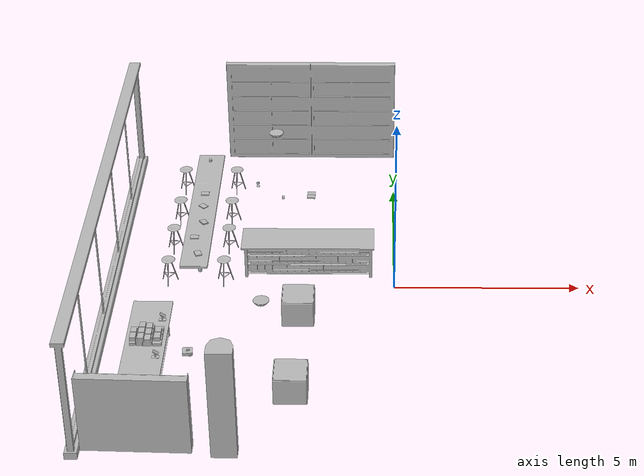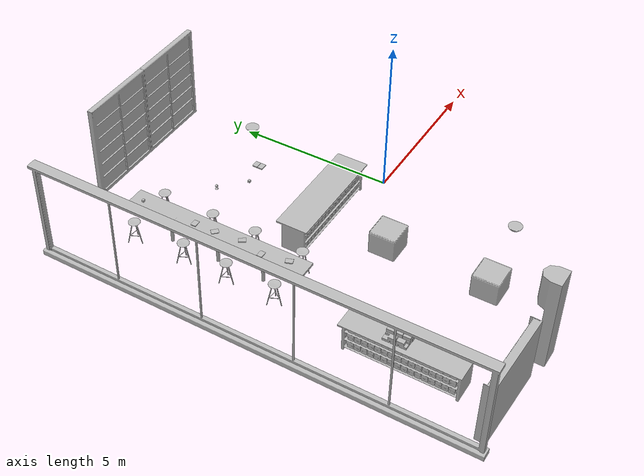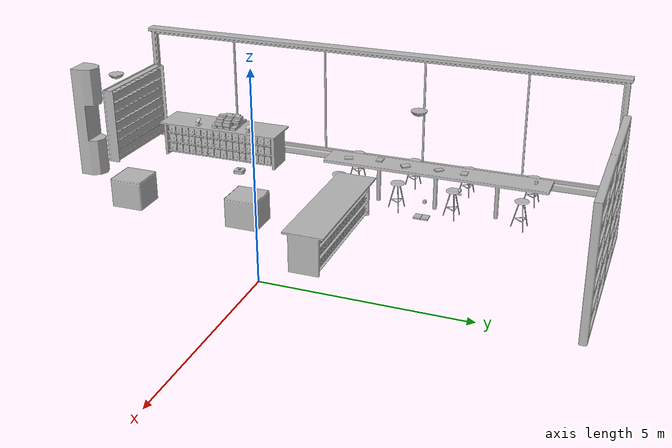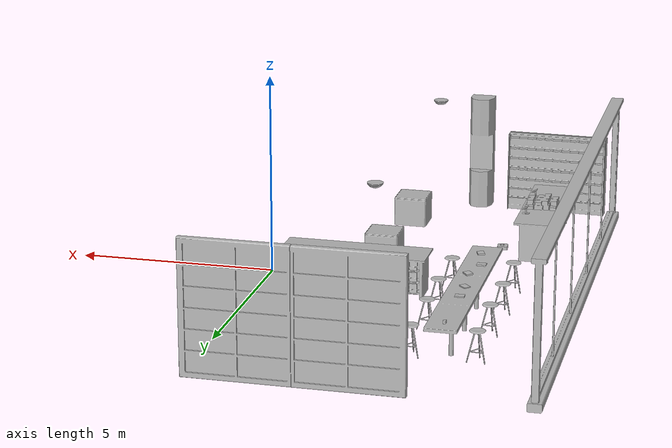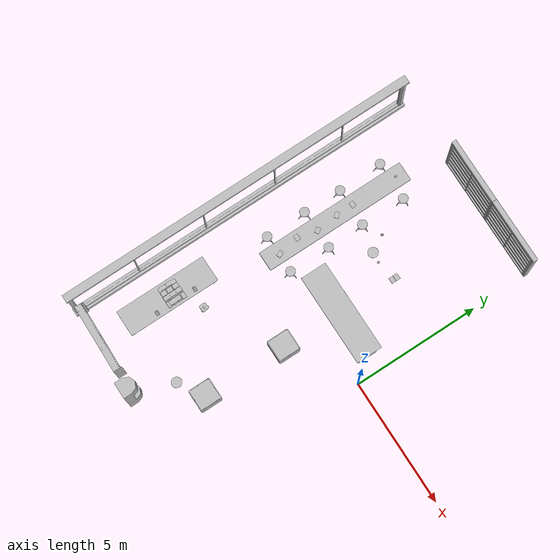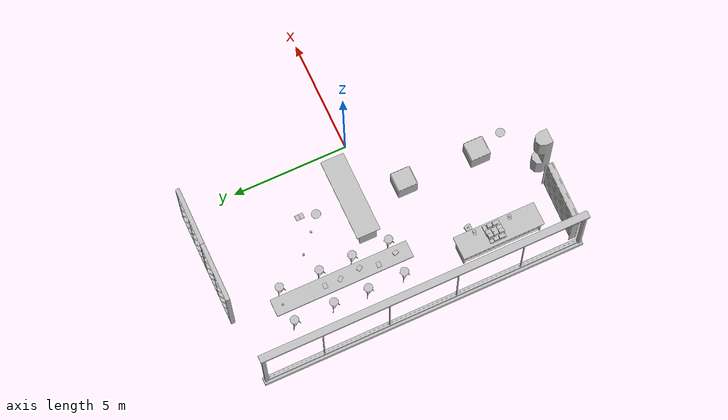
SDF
<sdf version="1.7">
 <world name="default">
  <model name="BookE_01_002">
   <frame name="aws_robomaker_retail_BookE_01::__model__" attached_to="aws_robomaker_retail_BookE_01::link">
    <pose relative_to="__model__">0 0 0 0 -0 0</pose>
   </frame>
   <link name="aws_robomaker_retail_BookE_01::link">
    <inertial>
     <mass>1</mass>
     <inertia><ixy>0</ixy><ixz>0</ixz><iyz>0</iyz><ixx>0.0666</ixx><iyy>0.0346</iyy><izz>0.0986</izz></inertia>
    </inertial>
    <collision name="collision">
     <geometry>
      <mesh>
       <uri>file://models/aws_robomaker_retail_BookE_01/meshes/aws_BookE_01_collision.DAE</uri>
       <scale>1 1 1</scale>
      </mesh>
     </geometry>
    </collision>
    <visual name="visual">
     <geometry>
      <mesh><uri>file://models/aws_robomaker_retail_BookE_01/meshes/aws_BookE_01_visual.DAE</uri></mesh>
     </geometry>
     <meta><layer>1</layer></meta>
    </visual>
    <pose relative_to="aws_robomaker_retail_BookE_01::__model__">0 0 0 0 -0 0</pose>
   </link>
   <static>1</static>
   <pose>-5.414 3.33067 0.934015 -1e-06 -1e-06 -1.54109</pose>
  </model>
  <model name="BookE_01_008">
   <frame name="aws_robomaker_retail_BookE_01::__model__" attached_to="aws_robomaker_retail_BookE_01::link">
    <pose relative_to="__model__">0 0 0 0 -0 0</pose>
   </frame>
   <link name="aws_robomaker_retail_BookE_01::link">
    <inertial>
     <mass>1</mass>
     <inertia><ixy>0</ixy><ixz>0</ixz><iyz>0</iyz><ixx>0.0666</ixx><iyy>0.0346</iyy><izz>0.0986</izz></inertia>
    </inertial>
    <collision name="collision">
     <geometry>
      <mesh>
       <uri>file://models/aws_robomaker_retail_BookE_01/meshes/aws_BookE_01_collision.DAE</uri>
       <scale>1 1 1</scale>
      </mesh>
     </geometry>
    </collision>
    <visual name="visual">
     <geometry>
      <mesh><uri>file://models/aws_robomaker_retail_BookE_01/meshes/aws_BookE_01_visual.DAE</uri></mesh>
     </geometry>
     <meta><layer>1</layer></meta>
    </visual>
    <pose relative_to="aws_robomaker_retail_BookE_01::__model__">0 0 0 0 -0 0</pose>
   </link>
   <static>1</static>
   <pose>-5.31512 1.77195 0.955242 3.14124 -0.072268 -2.52691</pose>
  </model>
  <model name="BookE_01_010">
   <frame name="aws_robomaker_retail_BookE_01::__model__" attached_to="aws_robomaker_retail_BookE_01::link">
    <pose relative_to="__model__">0 0 0 0 -0 0</pose>
   </frame>
   <link name="aws_robomaker_retail_BookE_01::link">
    <inertial>
     <mass>1</mass>
     <inertia><ixy>0</ixy><ixz>0</ixz><iyz>0</iyz><ixx>0.0666</ixx><iyy>0.0346</iyy><izz>0.0986</izz></inertia>
    </inertial>
    <collision name="collision">
     <geometry>
      <mesh>
       <uri>file://models/aws_robomaker_retail_BookE_01/meshes/aws_BookE_01_collision.DAE</uri>
       <scale>1 1 1</scale>
      </mesh>
     </geometry>
    </collision>
    <visual name="visual">
     <geometry>
      <mesh><uri>file://models/aws_robomaker_retail_BookE_01/meshes/aws_BookE_01_visual.DAE</uri></mesh>
     </geometry>
     <meta><layer>1</layer></meta>
    </visual>
    <pose relative_to="aws_robomaker_retail_BookE_01::__model__">0 0 0 0 -0 0</pose>
   </link>
   <static>1</static>
   <pose>-5.50342 1.01206 0.941463 0 0 -1.56844</pose>
  </model>
  <model name="BookE_01_012">
   <frame name="aws_robomaker_retail_BookE_01::__model__" attached_to="aws_robomaker_retail_BookE_01::link">
    <pose relative_to="__model__">0 0 0 0 -0 0</pose>
   </frame>
   <link name="aws_robomaker_retail_BookE_01::link">
    <inertial>
     <mass>1</mass>
     <inertia><ixy>0</ixy><ixz>0</ixz><iyz>0</iyz><ixx>0.0666</ixx><iyy>0.0346</iyy><izz>0.0986</izz></inertia>
    </inertial>
    <collision name="collision">
     <geometry>
      <mesh>
       <uri>file://models/aws_robomaker_retail_BookE_01/meshes/aws_BookE_01_collision.DAE</uri>
       <scale>1 1 1</scale>
      </mesh>
     </geometry>
    </collision>
    <visual name="visual">
     <geometry>
      <mesh><uri>file://models/aws_robomaker_retail_BookE_01/meshes/aws_BookE_01_visual.DAE</uri></mesh>
     </geometry>
     <meta><layer>1</layer></meta>
    </visual>
    <pose relative_to="aws_robomaker_retail_BookE_01::__model__">0 0 0 0 -0 0</pose>
   </link>
   <static>1</static>
   <pose>-5.33358 0.186186 0.949316 -1e-06 -0.004549 -2.79848</pose>
  </model>
  <model name="BookE_01_013">
   <frame name="aws_robomaker_retail_BookE_01::__model__" attached_to="aws_robomaker_retail_BookE_01::link">
    <pose relative_to="__model__">0 0 0 0 -0 0</pose>
   </frame>
   <link name="aws_robomaker_retail_BookE_01::link">
    <inertial>
     <mass>1</mass>
     <inertia><ixy>0</ixy><ixz>0</ixz><iyz>0</iyz><ixx>0.0666</ixx><iyy>0.0346</iyy><izz>0.0986</izz></inertia>
    </inertial>
    <collision name="collision">
     <geometry>
      <mesh>
       <uri>file://models/aws_robomaker_retail_BookE_01/meshes/aws_BookE_01_collision.DAE</uri>
       <scale>1 1 1</scale>
      </mesh>
     </geometry>
    </collision>
    <visual name="visual">
     <geometry>
      <mesh><uri>file://models/aws_robomaker_retail_BookE_01/meshes/aws_BookE_01_visual.DAE</uri></mesh>
     </geometry>
     <meta><layer>1</layer></meta>
    </visual>
    <pose relative_to="aws_robomaker_retail_BookE_01::__model__">0 0 0 0 -0 0</pose>
   </link>
   <static>1</static>
   <pose>-5.40391 2.65088 0.931119 0.021204 -1e-06 -2.35575</pose>
  </model>
  <model name="BookE_01_016">
   <frame name="aws_robomaker_retail_BookE_01::__model__" attached_to="aws_robomaker_retail_BookE_01::link">
    <pose relative_to="__model__">0 0 0 0 -0 0</pose>
   </frame>
   <link name="aws_robomaker_retail_BookE_01::link">
    <inertial>
     <mass>1</mass>
     <inertia><ixy>0</ixy><ixz>0</ixz><iyz>0</iyz><ixx>0.0666</ixx><iyy>0.0346</iyy><izz>0.0986</izz></inertia>
    </inertial>
    <collision name="collision">
     <geometry>
      <mesh>
       <uri>file://models/aws_robomaker_retail_BookE_01/meshes/aws_BookE_01_collision.DAE</uri>
       <scale>1 1 1</scale>
      </mesh>
     </geometry>
    </collision>
    <visual name="visual">
     <geometry>
      <mesh><uri>file://models/aws_robomaker_retail_BookE_01/meshes/aws_BookE_01_visual.DAE</uri></mesh>
     </geometry>
     <meta><layer>1</layer></meta>
    </visual>
    <pose relative_to="aws_robomaker_retail_BookE_01::__model__">0 0 0 0 -0 0</pose>
   </link>
   <static>1</static>
   <pose>-2.35737 2.99369 1.05494 0 -0 1.56816</pose>
  </model>
  <model name="BookE_01_019">
   <frame name="aws_robomaker_retail_BookE_01::__model__" attached_to="aws_robomaker_retail_BookE_01::link">
    <pose relative_to="__model__">0 0 0 0 -0 0</pose>
   </frame>
   <link name="aws_robomaker_retail_BookE_01::link">
    <inertial>
     <mass>1</mass>
     <inertia><ixy>0</ixy><ixz>0</ixz><iyz>0</iyz><ixx>0.0666</ixx><iyy>0.0346</iyy><izz>0.0986</izz></inertia>
    </inertial>
    <collision name="collision">
     <geometry>
      <mesh>
       <uri>file://models/aws_robomaker_retail_BookE_01/meshes/aws_BookE_01_collision.DAE</uri>
       <scale>1 1 1</scale>
      </mesh>
     </geometry>
    </collision>
    <visual name="visual">
     <geometry>
      <mesh><uri>file://models/aws_robomaker_retail_BookE_01/meshes/aws_BookE_01_visual.DAE</uri></mesh>
     </geometry>
     <meta><layer>1</layer></meta>
    </visual>
    <pose relative_to="aws_robomaker_retail_BookE_01::__model__">0 0 0 0 -0 0</pose>
   </link>
   <static>1</static>
   <pose>-2.35737 3.17292 1.05494 0 -0 1.56816</pose>
  </model>
  <model name="BookD_01_003">
   <frame name="aws_robomaker_retail_BookD_01::__model__" attached_to="aws_robomaker_retail_BookD_01::link">
    <pose relative_to="__model__">0 0 0 0 -0 0</pose>
   </frame>
   <link name="aws_robomaker_retail_BookD_01::link">
    <inertial><mass>0.5</mass></inertial>
    <collision name="collision">
     <geometry>
      <mesh>
       <uri>file://models/aws_robomaker_retail_BookD_01/meshes/aws_BookD_01_collision.DAE</uri>
       <scale>1 1 1</scale>
      </mesh>
     </geometry>
    </collision>
    <visual name="visual">
     <geometry>
      <mesh><uri>file://models/aws_robomaker_retail_BookD_01/meshes/aws_BookD_01_visual.DAE</uri></mesh>
     </geometry>
     <meta><layer>1</layer></meta>
    </visual>
    <pose relative_to="aws_robomaker_retail_BookD_01::__model__">0 0 0 0 -0 0</pose>
   </link>
   <static>1</static>
   <pose>-6.23561 -3.78518 1.03816 8e-06 -0 1.58038</pose>
  </model>
  <model name="BookshelfB_01_001">
   <frame name="aws_robomaker_retail_BookshelfB_01::__model__" attached_to="aws_robomaker_retail_BookshelfB_01::link">
    <pose relative_to="__model__">0 0 0 0 -0 0</pose>
   </frame>
   <link name="aws_robomaker_retail_BookshelfB_01::link">
    <inertial>
     <mass>50</mass>
     <inertia><ixx>19.8742</ixx><ixy>0</ixy><ixz>0</ixz><iyy>49.1263</iyy><iyz>0</iyz><izz>30.2231</izz></inertia>
    </inertial>
    <collision name="collision">
     <geometry>
      <mesh>
       <uri>file://models/aws_robomaker_retail_BookshelfB_01/meshes/aws_BookshelfB_01_collision.DAE</uri>
       <scale>1 1 1</scale>
      </mesh>
     </geometry>
    </collision>
    <visual name="visual">
     <geometry>
      <mesh><uri>file://models/aws_robomaker_retail_BookshelfB_01/meshes/aws_BookshelfB_01_visual.DAE</uri></mesh>
     </geometry>
     <meta><layer>1</layer></meta>
    </visual>
    <pose relative_to="aws_robomaker_retail_BookshelfB_01::__model__">0 0 0 0 -0 0</pose>
   </link>
   <static>1</static>
   <pose>-6.18968 -6.78565 -0.008942 0.003533 0.000121 -0.032073</pose>
  </model>
  <model name="BookshelfC_01_003">
   <frame name="aws_robomaker_retail_BookshelfC_01::__model__" attached_to="aws_robomaker_retail_BookshelfC_01::link">
    <pose relative_to="__model__">0 0 0 0 -0 0</pose>
   </frame>
   <link name="aws_robomaker_retail_BookshelfC_01::link">
    <inertial>
     <mass>50</mass>
     <inertia><ixx>5.5865</ixx><ixy>0</ixy><ixz>0</ixz><iyy>5.47324</iyy><iyz>0</iyz><izz>6.23277</izz></inertia>
    </inertial>
    <collision name="collision">
     <geometry>
      <mesh>
       <uri>file://models/aws_robomaker_retail_BookshelfC_01/meshes/aws_BookshelfC_01_collision.DAE</uri>
       <scale>1 1 1</scale>
      </mesh>
     </geometry>
    </collision>
    <visual name="visual">
     <geometry>
      <mesh><uri>file://models/aws_robomaker_retail_BookshelfC_01/meshes/aws_BookshelfC_01_visual.DAE</uri></mesh>
     </geometry>
     <meta><layer>1</layer></meta>
    </visual>
    <pose relative_to="aws_robomaker_retail_BookshelfC_01::__model__">0 0 0 0 -0 0</pose>
   </link>
   <static>1</static>
   <pose>-2.55449 -1.48746 0.045908 0 -0 0</pose>
  </model>
  <model name="BookshelfC_01_004">
   <frame name="aws_robomaker_retail_BookshelfC_01::__model__" attached_to="aws_robomaker_retail_BookshelfC_01::link">
    <pose relative_to="__model__">0 0 0 0 -0 0</pose>
   </frame>
   <link name="aws_robomaker_retail_BookshelfC_01::link">
    <inertial>
     <mass>50</mass>
     <inertia><ixx>5.5865</ixx><ixy>0</ixy><ixz>0</ixz><iyy>5.47324</iyy><iyz>0</iyz><izz>6.23277</izz></inertia>
    </inertial>
    <collision name="collision">
     <geometry>
      <mesh>
       <uri>file://models/aws_robomaker_retail_BookshelfC_01/meshes/aws_BookshelfC_01_collision.DAE</uri>
       <scale>1 1 1</scale>
      </mesh>
     </geometry>
    </collision>
    <visual name="visual">
     <geometry>
      <mesh><uri>file://models/aws_robomaker_retail_BookshelfC_01/meshes/aws_BookshelfC_01_visual.DAE</uri></mesh>
     </geometry>
     <meta><layer>1</layer></meta>
    </visual>
    <pose relative_to="aws_robomaker_retail_BookshelfC_01::__model__">0 0 0 0 -0 0</pose>
   </link>
   <static>1</static>
   <pose>-2.60858 -4.76165 0.045908 0 -0 0</pose>
  </model>
  <model name="ChairB_01_009">
   <frame name="aws_robomaker_retail_ChairB_01::__model__" attached_to="aws_robomaker_retail_ChairB_01::link">
    <pose relative_to="__model__">0 0 0 0 -0 0</pose>
   </frame>
   <link name="aws_robomaker_retail_ChairB_01::link">
    <inertial>
     <mass>3</mass>
     <inertia>
      <ixx>0.188185</ixx>
      <ixy>0</ixy>
      <ixz>0</ixz>
      <iyy>0.190617</iyy>
      <iyz>0</iyz>
      <izz>0.100999</izz>
     </inertia>
    </inertial>
    <collision name="collision">
     <geometry>
      <mesh>
       <uri>file://models/aws_robomaker_retail_ChairB_01/meshes/aws_ChairB_01_collision.DAE</uri>
       <scale>1 1 1</scale>
      </mesh>
     </geometry>
    </collision>
    <visual name="visual">
     <geometry>
      <mesh><uri>file://models/aws_robomaker_retail_ChairB_01/meshes/aws_ChairB_01_visual.DAE</uri></mesh>
     </geometry>
     <meta><layer>1</layer></meta>
    </visual>
    <pose relative_to="aws_robomaker_retail_ChairB_01::__model__">0 0 0 0 -0 0</pose>
   </link>
   <static>1</static>
   <pose>-4.60295 5.02192 0.030259 -0.001073 -0.001935 0.001439</pose>
  </model>
  <model name="ChairB_01_010">
   <frame name="aws_robomaker_retail_ChairB_01::__model__" attached_to="aws_robomaker_retail_ChairB_01::link">
    <pose relative_to="__model__">0 0 0 0 -0 0</pose>
   </frame>
   <link name="aws_robomaker_retail_ChairB_01::link">
    <inertial>
     <mass>3</mass>
     <inertia>
      <ixx>0.188185</ixx>
      <ixy>0</ixy>
      <ixz>0</ixz>
      <iyy>0.190617</iyy>
      <iyz>0</iyz>
      <izz>0.100999</izz>
     </inertia>
    </inertial>
    <collision name="collision">
     <geometry>
      <mesh>
       <uri>file://models/aws_robomaker_retail_ChairB_01/meshes/aws_ChairB_01_collision.DAE</uri>
       <scale>1 1 1</scale>
      </mesh>
     </geometry>
    </collision>
    <visual name="visual">
     <geometry>
      <mesh><uri>file://models/aws_robomaker_retail_ChairB_01/meshes/aws_ChairB_01_visual.DAE</uri></mesh>
     </geometry>
     <meta><layer>1</layer></meta>
    </visual>
    <pose relative_to="aws_robomaker_retail_ChairB_01::__model__">0 0 0 0 -0 0</pose>
   </link>
   <static>1</static>
   <pose>-6.10969 5.02625 0.027274 -0.001422 -0.002424 0.000176</pose>
  </model>
  <model name="ChairB_01_011">
   <frame name="aws_robomaker_retail_ChairB_01::__model__" attached_to="aws_robomaker_retail_ChairB_01::link">
    <pose relative_to="__model__">0 0 0 0 -0 0</pose>
   </frame>
   <link name="aws_robomaker_retail_ChairB_01::link">
    <inertial>
     <mass>3</mass>
     <inertia>
      <ixx>0.188185</ixx>
      <ixy>0</ixy>
      <ixz>0</ixz>
      <iyy>0.190617</iyy>
      <iyz>0</iyz>
      <izz>0.100999</izz>
     </inertia>
    </inertial>
    <collision name="collision">
     <geometry>
      <mesh>
       <uri>file://models/aws_robomaker_retail_ChairB_01/meshes/aws_ChairB_01_collision.DAE</uri>
       <scale>1 1 1</scale>
      </mesh>
     </geometry>
    </collision>
    <visual name="visual">
     <geometry>
      <mesh><uri>file://models/aws_robomaker_retail_ChairB_01/meshes/aws_ChairB_01_visual.DAE</uri></mesh>
     </geometry>
     <meta><layer>1</layer></meta>
    </visual>
    <pose relative_to="aws_robomaker_retail_ChairB_01::__model__">0 0 0 0 -0 0</pose>
   </link>
   <static>1</static>
   <pose>-4.61617 3.27675 0.0321 -0.001068 -0.001938 0.000117</pose>
  </model>
  <model name="ChairB_01_012">
   <frame name="aws_robomaker_retail_ChairB_01::__model__" attached_to="aws_robomaker_retail_ChairB_01::link">
    <pose relative_to="__model__">0 0 0 0 -0 0</pose>
   </frame>
   <link name="aws_robomaker_retail_ChairB_01::link">
    <inertial>
     <mass>3</mass>
     <inertia>
      <ixx>0.188185</ixx>
      <ixy>0</ixy>
      <ixz>0</ixz>
      <iyy>0.190617</iyy>
      <iyz>0</iyz>
      <izz>0.100999</izz>
     </inertia>
    </inertial>
    <collision name="collision">
     <geometry>
      <mesh>
       <uri>file://models/aws_robomaker_retail_ChairB_01/meshes/aws_ChairB_01_collision.DAE</uri>
       <scale>1 1 1</scale>
      </mesh>
     </geometry>
    </collision>
    <visual name="visual">
     <geometry>
      <mesh><uri>file://models/aws_robomaker_retail_ChairB_01/meshes/aws_ChairB_01_visual.DAE</uri></mesh>
     </geometry>
     <meta><layer>1</layer></meta>
    </visual>
    <pose relative_to="aws_robomaker_retail_ChairB_01::__model__">0 0 0 0 -0 0</pose>
   </link>
   <static>1</static>
   <pose>-6.09076 3.29341 0.029216 -0.001072 -0.001936 0.000119</pose>
  </model>
  <model name="ChairB_01_013">
   <frame name="aws_robomaker_retail_ChairB_01::__model__" attached_to="aws_robomaker_retail_ChairB_01::link">
    <pose relative_to="__model__">0 0 0 0 -0 0</pose>
   </frame>
   <link name="aws_robomaker_retail_ChairB_01::link">
    <inertial>
     <mass>3</mass>
     <inertia>
      <ixx>0.188185</ixx>
      <ixy>0</ixy>
      <ixz>0</ixz>
      <iyy>0.190617</iyy>
      <iyz>0</iyz>
      <izz>0.100999</izz>
     </inertia>
    </inertial>
    <collision name="collision">
     <geometry>
      <mesh>
       <uri>file://models/aws_robomaker_retail_ChairB_01/meshes/aws_ChairB_01_collision.DAE</uri>
       <scale>1 1 1</scale>
      </mesh>
     </geometry>
    </collision>
    <visual name="visual">
     <geometry>
      <mesh><uri>file://models/aws_robomaker_retail_ChairB_01/meshes/aws_ChairB_01_visual.DAE</uri></mesh>
     </geometry>
     <meta><layer>1</layer></meta>
    </visual>
    <pose relative_to="aws_robomaker_retail_ChairB_01::__model__">0 0 0 0 -0 0</pose>
   </link>
   <static>1</static>
   <pose>-4.5896 1.81577 0.032459 0.001362 -0.001944 0.000145</pose>
  </model>
  <model name="ChairB_01_014">
   <frame name="aws_robomaker_retail_ChairB_01::__model__" attached_to="aws_robomaker_retail_ChairB_01::link">
    <pose relative_to="__model__">0 0 0 0 -0 0</pose>
   </frame>
   <link name="aws_robomaker_retail_ChairB_01::link">
    <inertial>
     <mass>3</mass>
     <inertia>
      <ixx>0.188185</ixx>
      <ixy>0</ixy>
      <ixz>0</ixz>
      <iyy>0.190617</iyy>
      <iyz>0</iyz>
      <izz>0.100999</izz>
     </inertia>
    </inertial>
    <collision name="collision">
     <geometry>
      <mesh>
       <uri>file://models/aws_robomaker_retail_ChairB_01/meshes/aws_ChairB_01_collision.DAE</uri>
       <scale>1 1 1</scale>
      </mesh>
     </geometry>
    </collision>
    <visual name="visual">
     <geometry>
      <mesh><uri>file://models/aws_robomaker_retail_ChairB_01/meshes/aws_ChairB_01_visual.DAE</uri></mesh>
     </geometry>
     <meta><layer>1</layer></meta>
    </visual>
    <pose relative_to="aws_robomaker_retail_ChairB_01::__model__">0 0 0 0 -0 0</pose>
   </link>
   <static>1</static>
   <pose>-6.1301 1.7986 0.02944 0.001362 -0.001946 0.000105</pose>
  </model>
  <model name="ChairB_01_015">
   <frame name="aws_robomaker_retail_ChairB_01::__model__" attached_to="aws_robomaker_retail_ChairB_01::link">
    <pose relative_to="__model__">0 0 0 0 -0 0</pose>
   </frame>
   <link name="aws_robomaker_retail_ChairB_01::link">
    <inertial>
     <mass>3</mass>
     <inertia>
      <ixx>0.188185</ixx>
      <ixy>0</ixy>
      <ixz>0</ixz>
      <iyy>0.190617</iyy>
      <iyz>0</iyz>
      <izz>0.100999</izz>
     </inertia>
    </inertial>
    <collision name="collision">
     <geometry>
      <mesh>
       <uri>file://models/aws_robomaker_retail_ChairB_01/meshes/aws_ChairB_01_collision.DAE</uri>
       <scale>1 1 1</scale>
      </mesh>
     </geometry>
    </collision>
    <visual name="visual">
     <geometry>
      <mesh><uri>file://models/aws_robomaker_retail_ChairB_01/meshes/aws_ChairB_01_visual.DAE</uri></mesh>
     </geometry>
     <meta><layer>1</layer></meta>
    </visual>
    <pose relative_to="aws_robomaker_retail_ChairB_01::__model__">0 0 0 0 -0 0</pose>
   </link>
   <static>1</static>
   <pose>-4.6075 0.203637 0.030218 0.001362 -0.001944 0.000163</pose>
  </model>
  <model name="ChairB_01_016">
   <frame name="aws_robomaker_retail_ChairB_01::__model__" attached_to="aws_robomaker_retail_ChairB_01::link">
    <pose relative_to="__model__">0 0 0 0 -0 0</pose>
   </frame>
   <link name="aws_robomaker_retail_ChairB_01::link">
    <inertial>
     <mass>3</mass>
     <inertia>
      <ixx>0.188185</ixx>
      <ixy>0</ixy>
      <ixz>0</ixz>
      <iyy>0.190617</iyy>
      <iyz>0</iyz>
      <izz>0.100999</izz>
     </inertia>
    </inertial>
    <collision name="collision">
     <geometry>
      <mesh>
       <uri>file://models/aws_robomaker_retail_ChairB_01/meshes/aws_ChairB_01_collision.DAE</uri>
       <scale>1 1 1</scale>
      </mesh>
     </geometry>
    </collision>
    <visual name="visual">
     <geometry>
      <mesh><uri>file://models/aws_robomaker_retail_ChairB_01/meshes/aws_ChairB_01_visual.DAE</uri></mesh>
     </geometry>
     <meta><layer>1</layer></meta>
    </visual>
    <pose relative_to="aws_robomaker_retail_ChairB_01::__model__">0 0 0 0 -0 0</pose>
   </link>
   <static>1</static>
   <pose>-6.12149 0.195027 0.027272 0.001357 -0.00195 0.003291</pose>
  </model>
  <model name="ColumnB_01_002">
   <frame name="aws_robomaker_retail_ColumnB_01::__model__" attached_to="aws_robomaker_retail_ColumnB_01::link">
    <pose relative_to="__model__">0 0 0 0 -0 0</pose>
   </frame>
   <link name="aws_robomaker_retail_ColumnB_01::link">
    <inertial>
     <mass>50</mass>
     <inertia><ixx>44.5597</ixx><ixy>0</ixy><ixz>0</ixz><iyy>44.5597</iyy><iyz>0</iyz><izz>1.87942</izz></inertia>
    </inertial>
    <collision name="collision">
     <geometry>
      <mesh>
       <uri>file://models/aws_robomaker_retail_ColumnB_01/meshes/aws_ColumnB_01_collision.DAE</uri>
       <scale>1 1 1</scale>
      </mesh>
     </geometry>
    </collision>
    <visual name="visual">
     <geometry>
      <mesh><uri>file://models/aws_robomaker_retail_ColumnB_01/meshes/aws_ColumnB_01_visual.DAE</uri></mesh>
     </geometry>
     <meta><layer>1</layer></meta>
    </visual>
    <pose relative_to="aws_robomaker_retail_ColumnB_01::__model__">0 0 0 0 -0 0</pose>
   </link>
   <static>1</static>
   <pose>-4.07623 -6.86071 0.017511 0.001895 -0.000628 -0.003755</pose>
  </model>
  <model name="SecurityCamera_01_002">
   <frame name="aws_robomaker_retail_SecurityCamera_01::__model__" attached_to="aws_robomaker_retail_SecurityCamera_01::link">
    <pose relative_to="__model__">0 0 0 0 -0 0</pose>
   </frame>
   <link name="aws_robomaker_retail_SecurityCamera_01::link">
    <inertial>
     <mass>1</mass>
     <inertia>
      <ixx>18.2222</ixx>
      <ixy>0</ixy>
      <ixz>0</ixz>
      <iyy>18.2222</iyy>
      <iyz>0</iyz>
      <izz>0.0018767</izz>
     </inertia>
    </inertial>
    <collision name="collision">
     <geometry>
      <mesh>
       <uri>file://models/aws_robomaker_retail_SecurityCamera_01/meshes/aws_SecurityCamera_01_collision.DAE</uri>
       <scale>1 1 1</scale>
      </mesh>
     </geometry>
    </collision>
    <visual name="visual">
     <geometry>
      <mesh>
       <uri>file://models/aws_robomaker_retail_SecurityCamera_01/meshes/aws_SecurityCamera_01_visual.DAE</uri>
      </mesh>
     </geometry>
     <meta><layer>2</layer></meta>
    </visual>
    <pose relative_to="aws_robomaker_retail_SecurityCamera_01::__model__">0 0 0 0 -0 0</pose>
   </link>
   <static>1</static>
   <pose>-3.90451 3.59053 1.03776 0 -0 3.05091</pose>
  </model>
  <model name="DeskB_01_002">
   <frame name="aws_robomaker_retail_DeskB_01::__model__" attached_to="aws_robomaker_retail_DeskB_01::link">
    <pose relative_to="__model__">0 0 0 0 -0 0</pose>
   </frame>
   <link name="aws_robomaker_retail_DeskB_01::link">
    <inertial>
     <mass>50</mass>
     <inertia><ixx>154.884</ixx><ixy>0</ixy><ixz>0</ixz><iyy>7.48424</iyy><iyz>0</iyz><izz>152.099</izz></inertia>
    </inertial>
    <collision name="collision">
     <geometry>
      <mesh>
       <uri>file://models/aws_robomaker_retail_DeskB_01/meshes/aws_DeskB_01_collision.DAE</uri>
       <scale>1 1 1</scale>
      </mesh>
     </geometry>
    </collision>
    <visual name="visual">
     <geometry>
      <mesh><uri>file://models/aws_robomaker_retail_DeskB_01/meshes/aws_DeskB_01_visual.DAE</uri></mesh>
     </geometry>
     <meta><layer>1</layer></meta>
    </visual>
    <pose relative_to="aws_robomaker_retail_DeskB_01::__model__">0 0 0 0 -0 0</pose>
   </link>
   <static>1</static>
   <pose>-5.40071 2.58054 -0.181282 0 -0 0</pose>
  </model>
  <model name="DeskA_01_002">
   <frame name="aws_robomaker_retail_DeskA_01::__model__" attached_to="aws_robomaker_retail_DeskA_01::link">
    <pose relative_to="__model__">0 0 0 0 -0 0</pose>
   </frame>
   <link name="aws_robomaker_retail_DeskA_01::link">
    <inertial>
     <mass>20</mass>
     <inertia><ixx>3.49717</ixx><ixy>0</ixy><ixz>0</ixz><iyy>23.5599</iyy><iyz>0</iyz><izz>23.5702</izz></inertia>
    </inertial>
    <collision name="collision">
     <geometry>
      <mesh>
       <uri>file://models/aws_robomaker_retail_DeskA_01/meshes/aws_DeskA_01_collision.DAE</uri>
       <scale>1 1 1</scale>
      </mesh>
     </geometry>
    </collision>
    <visual name="visual">
     <geometry>
      <mesh><uri>file://models/aws_robomaker_retail_DeskA_01/meshes/aws_DeskA_01_visual.DAE</uri></mesh>
     </geometry>
     <meta><layer>1</layer></meta>
    </visual>
    <pose relative_to="aws_robomaker_retail_DeskA_01::__model__">0 0 0 0 -0 0</pose>
   </link>
   <static>1</static>
   <pose>-2.36994 0.836099 0.00876 -0.000772 -0.001938 1.7e-05</pose>
  </model>
  <model name="DeskA_01_003">
   <frame name="aws_robomaker_retail_DeskA_01::__model__" attached_to="aws_robomaker_retail_DeskA_01::link">
    <pose relative_to="__model__">0 0 0 0 -0 0</pose>
   </frame>
   <link name="aws_robomaker_retail_DeskA_01::link">
    <inertial>
     <mass>20</mass>
     <inertia><ixx>3.49717</ixx><ixy>0</ixy><ixz>0</ixz><iyy>23.5599</iyy><iyz>0</iyz><izz>23.5702</izz></inertia>
    </inertial>
    <collision name="collision">
     <geometry>
      <mesh>
       <uri>file://models/aws_robomaker_retail_DeskA_01/meshes/aws_DeskA_01_collision.DAE</uri>
       <scale>1 1 1</scale>
      </mesh>
     </geometry>
    </collision>
    <visual name="visual">
     <geometry>
      <mesh><uri>file://models/aws_robomaker_retail_DeskA_01/meshes/aws_DeskA_01_visual.DAE</uri></mesh>
     </geometry>
     <meta><layer>1</layer></meta>
    </visual>
    <pose relative_to="aws_robomaker_retail_DeskA_01::__model__">0 0 0 0 -0 0</pose>
   </link>
   <static>1</static>
   <pose>-6.25465 -3.9792 -0.004603 0.001948 0.001361 -1.56957</pose>
  </model>
  <model name="DoorB_01_001">
   <frame name="aws_robomaker_retail_DoorB_01::__model__" attached_to="aws_robomaker_retail_DoorB_01::link">
    <pose relative_to="__model__">0 0 0 0 -0 0</pose>
   </frame>
   <link name="aws_robomaker_retail_DoorB_01::link">
    <inertial>
     <mass>50</mass>
     <inertia><ixx>44.5597</ixx><ixy>0</ixy><ixz>0</ixz><iyy>151.699</iyy><iyz>0</iyz><izz>107.806</izz></inertia>
    </inertial>
    <collision name="collision">
     <geometry>
      <mesh>
       <uri>file://models/aws_robomaker_retail_DoorB_01/meshes/aws_DoorB_01_collision.DAE</uri>
       <scale>1 1 1</scale>
      </mesh>
     </geometry>
    </collision>
    <visual name="visual">
     <geometry>
      <mesh><uri>file://models/aws_robomaker_retail_DoorB_01/meshes/aws_DoorB_01_visual.DAE</uri></mesh>
     </geometry>
     <meta><layer>2</layer></meta>
    </visual>
    <pose relative_to="aws_robomaker_retail_DoorB_01::__model__">0 0 0 0 -0 0</pose>
   </link>
   <static>1</static>
   <pose>-2.49246 7.21937 -0.035203 0 -0 0</pose>
  </model>
  <model name="TabletB_01_011">
   <frame name="aws_robomaker_retail_TabletB_01::__model__" attached_to="aws_robomaker_retail_TabletB_01::link">
    <pose relative_to="__model__">0 0 0 0 -0 0</pose>
   </frame>
   <link name="aws_robomaker_retail_TabletB_01::link">
    <inertial>
     <mass>0.161</mass>
     <inertia>
      <ixx>0.346954</ixx>
      <ixy>0</ixy>
      <ixz>0</ixz>
      <iyy>0.177288</iyy>
      <iyz>0</iyz>
      <izz>0.521826</izz>
     </inertia>
    </inertial>
    <collision name="collision">
     <geometry>
      <mesh>
       <uri>file://models/aws_robomaker_retail_TabletB_01/meshes/aws_TabletB_01_collision.DAE</uri>
       <scale>1 1 1</scale>
      </mesh>
     </geometry>
    </collision>
    <visual name="visual">
     <geometry>
      <mesh><uri>file://models/aws_robomaker_retail_TabletB_01/meshes/aws_TabletB_01_visual.DAE</uri></mesh>
     </geometry>
     <meta><layer>1</layer></meta>
    </visual>
    <pose relative_to="aws_robomaker_retail_TabletB_01::__model__">0 0 0 0 -0 0</pose>
   </link>
   <static>1</static>
   <pose>-5.91505 -3.03174 1.18472 0.518384 0.023341 1.56451</pose>
  </model>
  <model name="TabletB_01_012">
   <frame name="aws_robomaker_retail_TabletB_01::__model__" attached_to="aws_robomaker_retail_TabletB_01::link">
    <pose relative_to="__model__">0 0 0 0 -0 0</pose>
   </frame>
   <link name="aws_robomaker_retail_TabletB_01::link">
    <inertial>
     <mass>0.161</mass>
     <inertia>
      <ixx>0.346954</ixx>
      <ixy>0</ixy>
      <ixz>0</ixz>
      <iyy>0.177288</iyy>
      <iyz>0</iyz>
      <izz>0.521826</izz>
     </inertia>
    </inertial>
    <collision name="collision">
     <geometry>
      <mesh>
       <uri>file://models/aws_robomaker_retail_TabletB_01/meshes/aws_TabletB_01_collision.DAE</uri>
       <scale>1 1 1</scale>
      </mesh>
     </geometry>
    </collision>
    <visual name="visual">
     <geometry>
      <mesh><uri>file://models/aws_robomaker_retail_TabletB_01/meshes/aws_TabletB_01_visual.DAE</uri></mesh>
     </geometry>
     <meta><layer>1</layer></meta>
    </visual>
    <pose relative_to="aws_robomaker_retail_TabletB_01::__model__">0 0 0 0 -0 0</pose>
   </link>
   <static>1</static>
   <pose>-5.91505 -4.6124 1.18472 0.518384 0.023341 1.56451</pose>
  </model>
  <model name="Holder_01_019">
   <frame name="aws_robomaker_retail_Holder_01::__model__" attached_to="aws_robomaker_retail_Holder_01::link">
    <pose relative_to="__model__">0 0 0 0 -0 0</pose>
   </frame>
   <link name="aws_robomaker_retail_Holder_01::link">
    <inertial><mass>1</mass></inertial>
    <collision name="collision">
     <geometry>
      <mesh>
       <uri>file://models/aws_robomaker_retail_Holder_01/meshes/aws_Holder_01_collision.DAE</uri>
       <scale>1 1 1</scale>
      </mesh>
     </geometry>
    </collision>
    <visual name="visual">
     <geometry>
      <mesh><uri>file://models/aws_robomaker_retail_Holder_01/meshes/aws_Holder_01_visual.DAE</uri></mesh>
     </geometry>
     <meta><layer>2</layer></meta>
    </visual>
    <pose relative_to="aws_robomaker_retail_Holder_01::__model__">0 0 0 0 -0 0</pose>
   </link>
   <static>1</static>
   <pose>-5.92911 -3.03279 1.03776 0 -0 1.55</pose>
  </model>
  <model name="Holder_01_020">
   <frame name="aws_robomaker_retail_Holder_01::__model__" attached_to="aws_robomaker_retail_Holder_01::link">
    <pose relative_to="__model__">0 0 0 0 -0 0</pose>
   </frame>
   <link name="aws_robomaker_retail_Holder_01::link">
    <inertial><mass>1</mass></inertial>
    <collision name="collision">
     <geometry>
      <mesh>
       <uri>file://models/aws_robomaker_retail_Holder_01/meshes/aws_Holder_01_collision.DAE</uri>
       <scale>1 1 1</scale>
      </mesh>
     </geometry>
    </collision>
    <visual name="visual">
     <geometry>
      <mesh><uri>file://models/aws_robomaker_retail_Holder_01/meshes/aws_Holder_01_visual.DAE</uri></mesh>
     </geometry>
     <meta><layer>2</layer></meta>
    </visual>
    <pose relative_to="aws_robomaker_retail_Holder_01::__model__">0 0 0 0 -0 0</pose>
   </link>
   <static>1</static>
   <pose>-5.92911 -4.60364 1.03776 0 -0 1.55</pose>
  </model>
  <model name="LightA_01_004">
   <frame name="aws_robomaker_retail_LightA_01::__model__" attached_to="aws_robomaker_retail_LightA_01::link">
    <pose relative_to="__model__">0 0 0 0 -0 0</pose>
   </frame>
   <link name="aws_robomaker_retail_LightA_01::link">
    <inertial><mass>1</mass></inertial>
    <collision name="collision">
     <geometry>
      <mesh>
       <uri>file://models/aws_robomaker_retail_LightA_01/meshes/aws_LightA_01_collision.DAE</uri>
       <scale>1 1 1</scale>
      </mesh>
     </geometry>
    </collision>
    <visual name="visual">
     <geometry>
      <mesh><uri>file://models/aws_robomaker_retail_LightA_01/meshes/aws_LightA_01_visual.DAE</uri></mesh>
     </geometry>
     <meta><layer>3</layer></meta>
    </visual>
    <pose relative_to="aws_robomaker_retail_LightA_01::__model__">0 0 0 0 -0 0</pose>
   </link>
   <static>1</static>
   <pose>-3.21067 -5.38371 3.15033 0 -0 0</pose>
  </model>
  <model name="LightA_01_005">
   <frame name="aws_robomaker_retail_LightA_01::__model__" attached_to="aws_robomaker_retail_LightA_01::link">
    <pose relative_to="__model__">0 0 0 0 -0 0</pose>
   </frame>
   <link name="aws_robomaker_retail_LightA_01::link">
    <inertial><mass>1</mass></inertial>
    <collision name="collision">
     <geometry>
      <mesh>
       <uri>file://models/aws_robomaker_retail_LightA_01/meshes/aws_LightA_01_collision.DAE</uri>
       <scale>1 1 1</scale>
      </mesh>
     </geometry>
    </collision>
    <visual name="visual">
     <geometry>
      <mesh><uri>file://models/aws_robomaker_retail_LightA_01/meshes/aws_LightA_01_visual.DAE</uri></mesh>
     </geometry>
     <meta><layer>3</layer></meta>
    </visual>
    <pose relative_to="aws_robomaker_retail_LightA_01::__model__">0 0 0 0 -0 0</pose>
   </link>
   <static>1</static>
   <pose>-3.271 2.68593 3.15033 0 -0 0</pose>
  </model>
  <model name="MagicCube_01_002">
   <frame name="aws_robomaker_retail_MagicCube_01::__model__" attached_to="aws_robomaker_retail_MagicCube_01::link">
    <pose relative_to="__model__">0 0 0 0 -0 0</pose>
   </frame>
   <link name="aws_robomaker_retail_MagicCube_01::link">
    <inertial>
     <mass>0.2</mass>
     <inertia><ixx>0.01</ixx><ixy>0</ixy><ixz>0</ixz><iyy>0.01</iyy><iyz>0</iyz><izz>0.01</izz></inertia>
    </inertial>
    <collision name="collision">
     <geometry>
      <mesh>
       <uri>file://models/aws_robomaker_retail_MagicCube_01/meshes/aws_MagicCube_01_collision.DAE</uri>
       <scale>1 1 1</scale>
      </mesh>
     </geometry>
    </collision>
    <visual name="visual">
     <geometry>
      <mesh><uri>file://models/aws_robomaker_retail_MagicCube_01/meshes/aws_MagicCube_01_visual.DAE</uri></mesh>
     </geometry>
     <meta><layer>1</layer></meta>
    </visual>
    <pose relative_to="aws_robomaker_retail_MagicCube_01::__model__">0 0 0 0 -0 0</pose>
   </link>
   <static>1</static>
   <pose>-5.38367 5.17752 0.968608 1.56413 -1e-06 -1.55541</pose>
  </model>
  <model name="MagicCube_01_003">
   <frame name="aws_robomaker_retail_MagicCube_01::__model__" attached_to="aws_robomaker_retail_MagicCube_01::link">
    <pose relative_to="__model__">0 0 0 0 -0 0</pose>
   </frame>
   <link name="aws_robomaker_retail_MagicCube_01::link">
    <inertial>
     <mass>0.2</mass>
     <inertia><ixx>0.01</ixx><ixy>0</ixy><ixz>0</ixz><iyy>0.01</iyy><iyz>0</iyz><izz>0.01</izz></inertia>
    </inertial>
    <collision name="collision">
     <geometry>
      <mesh>
       <uri>file://models/aws_robomaker_retail_MagicCube_01/meshes/aws_MagicCube_01_collision.DAE</uri>
       <scale>1 1 1</scale>
      </mesh>
     </geometry>
    </collision>
    <visual name="visual">
     <geometry>
      <mesh><uri>file://models/aws_robomaker_retail_MagicCube_01/meshes/aws_MagicCube_01_visual.DAE</uri></mesh>
     </geometry>
     <meta><layer>1</layer></meta>
    </visual>
    <pose relative_to="aws_robomaker_retail_MagicCube_01::__model__">0 0 0 0 -0 0</pose>
   </link>
   <static>1</static>
   <pose>-3.14651 2.92846 1.03565 0 -0 0</pose>
  </model>
  <model name="ShopWindow_01_001">
   <frame name="aws_robomaker_retail_ShopWindow_01::__model__" attached_to="aws_robomaker_retail_ShopWindow_01::link">
    <pose relative_to="__model__">0 0 0 0 -0 0</pose>
   </frame>
   <link name="aws_robomaker_retail_ShopWindow_01::link">
    <inertial><mass>1</mass></inertial>
    <collision name="collision">
     <geometry>
      <mesh>
       <uri>file://models/aws_robomaker_retail_ShopWindow_01/meshes/aws_ShopWindow_01_collision.DAE</uri>
       <scale>1 1 1</scale>
      </mesh>
     </geometry>
    </collision>
    <visual name="visual">
     <geometry>
      <mesh><uri>file://models/aws_robomaker_retail_ShopWindow_01/meshes/aws_ShopWindow_01_visual.DAE</uri></mesh>
     </geometry>
    </visual>
    <pose relative_to="aws_robomaker_retail_ShopWindow_01::__model__">0 0 0 0 -0 0</pose>
   </link>
   <static>1</static>
   <pose>-7.73816 0.01596 -0.180092 0 -0 0</pose>
  </model>
  <model name="waffle">
   <pose>-5.27962 -3.06972 0.021193 2.9e-05 0.006692 0.097005</pose>
   <link name="base_footprint">
    <inertial>
     <inertia><ixx>1</ixx><ixy>0</ixy><ixz>0</ixz><iyy>1</iyy><iyz>0</iyz><izz>1</izz></inertia>
     <mass>1</mass>
    </inertial>
   </link>
   <link name="base_link">
    <inertial>
     <pose>-0.064 0 0.048 0 -0 0</pose>
     <inertia>
      <ixx>0.0421114</ixx>
      <ixy>0</ixy>
      <ixz>0</ixz>
      <iyy>0.0421114</iyy>
      <iyz>0</iyz>
      <izz>0.0752549</izz>
     </inertia>
     <mass>1.37291</mass>
    </inertial>
    <collision name="base_collision">
     <pose>-0.064 0 0.048 0 -0 0</pose>
     <geometry><box><size>0.265 0.265 0.089</size></box></geometry>
    </collision>
    <visual name="base_visual">
     <pose>-0.064 0 0 0 -0 0</pose>
     <geometry>
      <mesh><uri>model://turtlebot3_common/meshes/waffle_base.dae</uri><scale>0.001 0.001 0.001</scale></mesh>
     </geometry>
    </visual>
   </link>
   <link name="imu_link">
    <sensor name="tb3_imu" type="imu">
     <always_on>1</always_on>
     <update_rate>200</update_rate>
     <imu>
      <angular_velocity>
       <x><noise type="gaussian"><mean>0</mean><stddev>0.0002</stddev></noise></x>
       <y><noise type="gaussian"><mean>0</mean><stddev>0.0002</stddev></noise></y>
       <z><noise type="gaussian"><mean>0</mean><stddev>0.0002</stddev></noise></z>
      </angular_velocity>
      <linear_acceleration>
       <x><noise type="gaussian"><mean>0</mean><stddev>0.017</stddev></noise></x>
       <y><noise type="gaussian"><mean>0</mean><stddev>0.017</stddev></noise></y>
       <z><noise type="gaussian"><mean>0</mean><stddev>0.017</stddev></noise></z>
      </linear_acceleration>
     </imu>
     <plugin name="turtlebot3_imu" filename="libgazebo_ros_imu_sensor.so">
      <ros><remapping>~/out:=imu</remapping></ros>
     </plugin>
    </sensor>
    <inertial>
     <inertia><ixx>1</ixx><ixy>0</ixy><ixz>0</ixz><iyy>1</iyy><iyz>0</iyz><izz>1</izz></inertia>
     <mass>1</mass>
    </inertial>
   </link>
   <link name="base_scan">
    <inertial>
     <pose>-0.052 0 0.111 0 -0 0</pose>
     <inertia><ixx>0.001</ixx><ixy>0</ixy><ixz>0</ixz><iyy>0.001</iyy><iyz>0</iyz><izz>0.001</izz></inertia>
     <mass>0.114</mass>
    </inertial>
    <collision name="lidar_sensor_collision">
     <pose>-0.052 0 0.111 0 -0 0</pose>
     <geometry><cylinder><radius>0.0508</radius><length>0.055</length></cylinder></geometry>
    </collision>
    <visual name="lidar_sensor_visual">
     <pose>-0.064 0 0.121 0 -0 0</pose>
     <geometry>
      <mesh><uri>model://turtlebot3_common/meshes/lds.dae</uri><scale>0.001 0.001 0.001</scale></mesh>
     </geometry>
    </visual>
    <sensor name="hls_lfcd_lds" type="ray">
     <always_on>1</always_on>
     <visualize>1</visualize>
     <pose>-0.064 0 0.121 0 -0 0</pose>
     <update_rate>5</update_rate>
     <ray>
      <scan>
       <horizontal>
        <samples>360</samples>
        <resolution>1</resolution>
        <min_angle>0</min_angle>
        <max_angle>6.28</max_angle>
       </horizontal>
       <vertical><samples>1</samples><min_angle>0</min_angle><max_angle>0</max_angle></vertical>
      </scan>
      <range><min>0.12</min><max>3.5</max><resolution>0.015</resolution></range>
      <noise><type>gaussian</type><mean>0</mean><stddev>0.01</stddev></noise>
     </ray>
     <plugin name="turtlebot3_laserscan" filename="libgazebo_ros_ray_sensor.so">
      <ros><remapping>~/out:=scan</remapping></ros>
      <output_type>sensor_msgs/LaserScan</output_type>
      <frame_name>base_scan</frame_name>
     </plugin>
    </sensor>
   </link>
   <link name="wheel_left_link">
    <inertial>
     <pose>0 0.144 0.023 -1.57 0 0</pose>
     <inertia>
      <ixx>1.11756e-05</ixx>
      <ixy>-4.23698e-11</ixy>
      <ixz>-5.93817e-09</ixz>
      <iyy>1.11924e-05</iyy>
      <iyz>-1.44001e-11</iyz>
      <izz>2.07126e-05</izz>
     </inertia>
     <mass>0.1</mass>
    </inertial>
    <collision name="wheel_left_collision">
     <pose>0 0.144 0.023 -1.57 0 0</pose>
     <geometry><cylinder><radius>0.033</radius><length>0.018</length></cylinder></geometry>
     <surface>
      <friction>
       <ode><mu>100000</mu><mu2>100000</mu2><fdir1>0 0 0</fdir1><slip1>0</slip1><slip2>0</slip2></ode>
      </friction>
      <contact>
       <ode>
        <soft_cfm>0</soft_cfm>
        <soft_erp>0.2</soft_erp>
        <kp>100000</kp>
        <kd>1</kd>
        <max_vel>0.01</max_vel>
        <min_depth>0.001</min_depth>
       </ode>
      </contact>
     </surface>
    </collision>
    <visual name="wheel_left_visual">
     <pose>0 0.144 0.023 0 -0 0</pose>
     <geometry>
      <mesh><uri>model://turtlebot3_common/meshes/tire.dae</uri><scale>0.001 0.001 0.001</scale></mesh>
     </geometry>
    </visual>
   </link>
   <link name="wheel_right_link">
    <inertial>
     <pose>0 -0.144 0.023 -1.57 0 0</pose>
     <inertia>
      <ixx>1.11756e-05</ixx>
      <ixy>-4.23698e-11</ixy>
      <ixz>-5.93817e-09</ixz>
      <iyy>1.11924e-05</iyy>
      <iyz>-1.44001e-11</iyz>
      <izz>2.07126e-05</izz>
     </inertia>
     <mass>0.1</mass>
    </inertial>
    <collision name="wheel_right_collision">
     <pose>0 -0.144 0.023 -1.57 0 0</pose>
     <geometry><cylinder><radius>0.033</radius><length>0.018</length></cylinder></geometry>
     <surface>
      <friction>
       <ode><mu>100000</mu><mu2>100000</mu2><fdir1>0 0 0</fdir1><slip1>0</slip1><slip2>0</slip2></ode>
      </friction>
      <contact>
       <ode>
        <soft_cfm>0</soft_cfm>
        <soft_erp>0.2</soft_erp>
        <kp>100000</kp>
        <kd>1</kd>
        <max_vel>0.01</max_vel>
        <min_depth>0.001</min_depth>
       </ode>
      </contact>
     </surface>
    </collision>
    <visual name="wheel_right_visual">
     <pose>0 -0.144 0.023 0 -0 0</pose>
     <geometry>
      <mesh><uri>model://turtlebot3_common/meshes/tire.dae</uri><scale>0.001 0.001 0.001</scale></mesh>
     </geometry>
    </visual>
   </link>
   <link name="caster_back_right_link">
    <pose>-0.177 -0.064 -0.004 -1.57 0 0</pose>
    <inertial>
     <mass>0.001</mass>
     <inertia><ixx>1e-05</ixx><ixy>0</ixy><ixz>0</ixz><iyy>1e-05</iyy><iyz>0</iyz><izz>1e-05</izz></inertia>
    </inertial>
    <collision name="collision">
     <geometry><sphere><radius>0.005</radius></sphere></geometry>
     <surface>
      <contact>
       <ode>
        <soft_cfm>0</soft_cfm>
        <soft_erp>0.2</soft_erp>
        <kp>100000</kp>
        <kd>1</kd>
        <max_vel>0.01</max_vel>
        <min_depth>0.001</min_depth>
       </ode>
      </contact>
     </surface>
    </collision>
   </link>
   <link name="caster_back_left_link">
    <pose>-0.177 0.064 -0.004 -1.57 0 0</pose>
    <inertial>
     <mass>0.001</mass>
     <inertia><ixx>1e-05</ixx><ixy>0</ixy><ixz>0</ixz><iyy>1e-05</iyy><iyz>0</iyz><izz>1e-05</izz></inertia>
    </inertial>
    <collision name="collision">
     <geometry><sphere><radius>0.005</radius></sphere></geometry>
     <surface>
      <contact>
       <ode>
        <soft_cfm>0</soft_cfm>
        <soft_erp>0.2</soft_erp>
        <kp>100000</kp>
        <kd>1</kd>
        <max_vel>0.01</max_vel>
        <min_depth>0.001</min_depth>
       </ode>
      </contact>
     </surface>
    </collision>
   </link>
   <link name="camera_link">
    <inertial>
     <inertia><ixx>1</ixx><ixy>0</ixy><ixz>0</ixz><iyy>1</iyy><iyz>0</iyz><izz>1</izz></inertia>
     <mass>1</mass>
    </inertial>
   </link>
   <link name="camera_rgb_frame">
    <inertial>
     <pose>0.069 -0.047 0.107 0 -0 0</pose>
     <inertia><ixx>0.001</ixx><ixy>0</ixy><ixz>0</ixz><iyy>0.001</iyy><iyz>0</iyz><izz>0.001</izz></inertia>
     <mass>0.035</mass>
    </inertial>
    <pose>0.069 -0.047 0.107 0 -0 0</pose>
    <sensor name="camera" type="camera">
     <always_on>1</always_on>
     <visualize>1</visualize>
     <update_rate>30</update_rate>
     <camera name="intel_realsense_r200">
      <horizontal_fov>1.02974</horizontal_fov>
      <image><width>1920</width><height>1080</height><format>R8G8B8</format></image>
      <clip><near>0.02</near><far>300</far></clip>
      <noise><type>gaussian</type><mean>0</mean><stddev>0.007</stddev></noise>
     </camera>
     <plugin name="camera_driver" filename="libgazebo_ros_camera.so"/>
    </sensor>
   </link>
   <joint name="base_joint" type="fixed">
    <parent>base_footprint</parent>
    <child>base_link</child>
    <pose>0 0 0.01 0 -0 0</pose>
   </joint>
   <joint name="wheel_left_joint" type="revolute">
    <parent>base_link</parent>
    <child>wheel_left_link</child>
    <pose>0 0.144 0.023 -1.57 0 0</pose>
    <axis>
     <xyz>0 0 1</xyz>
     <limit><lower>-1e+16</lower><upper>1e+16</upper></limit>
     <dynamics><spring_reference>0</spring_reference><spring_stiffness>0</spring_stiffness></dynamics>
    </axis>
   </joint>
   <joint name="wheel_right_joint" type="revolute">
    <parent>base_link</parent>
    <child>wheel_right_link</child>
    <pose>0 -0.144 0.023 -1.57 0 0</pose>
    <axis>
     <xyz>0 0 1</xyz>
     <limit><lower>-1e+16</lower><upper>1e+16</upper></limit>
     <dynamics><spring_reference>0</spring_reference><spring_stiffness>0</spring_stiffness></dynamics>
    </axis>
   </joint>
   <joint name="caster_back_right_joint" type="ball">
    <parent>base_link</parent>
    <child>caster_back_right_link</child>
   </joint>
   <joint name="caster_back_left_joint" type="ball">
    <parent>base_link</parent>
    <child>caster_back_left_link</child>
   </joint>
   <joint name="imu_joint" type="fixed">
    <parent>base_link</parent>
    <child>imu_link</child>
    <pose>-0.032 0 0.068 0 -0 0</pose>
    <axis><xyz>0 0 1</xyz><limit><lower>-1e+16</lower><upper>1e+16</upper></limit></axis>
   </joint>
   <joint name="lidar_joint" type="fixed">
    <parent>base_link</parent>
    <child>base_scan</child>
    <pose>-0.064 0 0.121 0 -0 0</pose>
    <axis><xyz>0 0 1</xyz><limit><lower>-1e+16</lower><upper>1e+16</upper></limit></axis>
   </joint>
   <joint name="camera_joint" type="fixed">
    <parent>base_link</parent>
    <child>camera_link</child>
    <pose>0.064 -0.065 0.094 0 -0 0</pose>
    <axis><xyz>0 0 1</xyz><limit><lower>-1e+16</lower><upper>1e+16</upper></limit></axis>
   </joint>
   <joint name="camera_rgb_joint" type="fixed">
    <parent>camera_link</parent>
    <child>camera_rgb_frame</child>
    <pose>0.005 0.018 0.013 0 -0 0</pose>
    <axis><xyz>0 0 1</xyz><limit><lower>-1e+16</lower><upper>1e+16</upper></limit></axis>
   </joint>
   <plugin name="turtlebot3_diff_drive" filename="libgazebo_ros_diff_drive.so">
    <update_rate>30</update_rate>
    <left_joint>wheel_left_joint</left_joint>
    <right_joint>wheel_right_joint</right_joint>
    <wheel_separation>0.287</wheel_separation>
    <wheel_diameter>0.066</wheel_diameter>
    <max_wheel_torque>20</max_wheel_torque>
    <max_wheel_acceleration>1.0</max_wheel_acceleration>
    <command_topic>cmd_vel</command_topic>
    <publish_odom>1</publish_odom>
    <publish_odom_tf>1</publish_odom_tf>
    <publish_wheel_tf>0</publish_wheel_tf>
    <odometry_topic>odom</odometry_topic>
    <odometry_frame>odom</odometry_frame>
    <robot_base_frame>base_footprint</robot_base_frame>
   </plugin>
   <plugin name="turtlebot3_joint_state" filename="libgazebo_ros_joint_state_publisher.so">
    <ros><remapping>~/out:=joint_states</remapping></ros>
    <update_rate>30</update_rate>
    <joint_name>wheel_left_joint</joint_name>
    <joint_name>wheel_right_joint</joint_name>
   </plugin>
  </model>
 </world>
</sdf>
